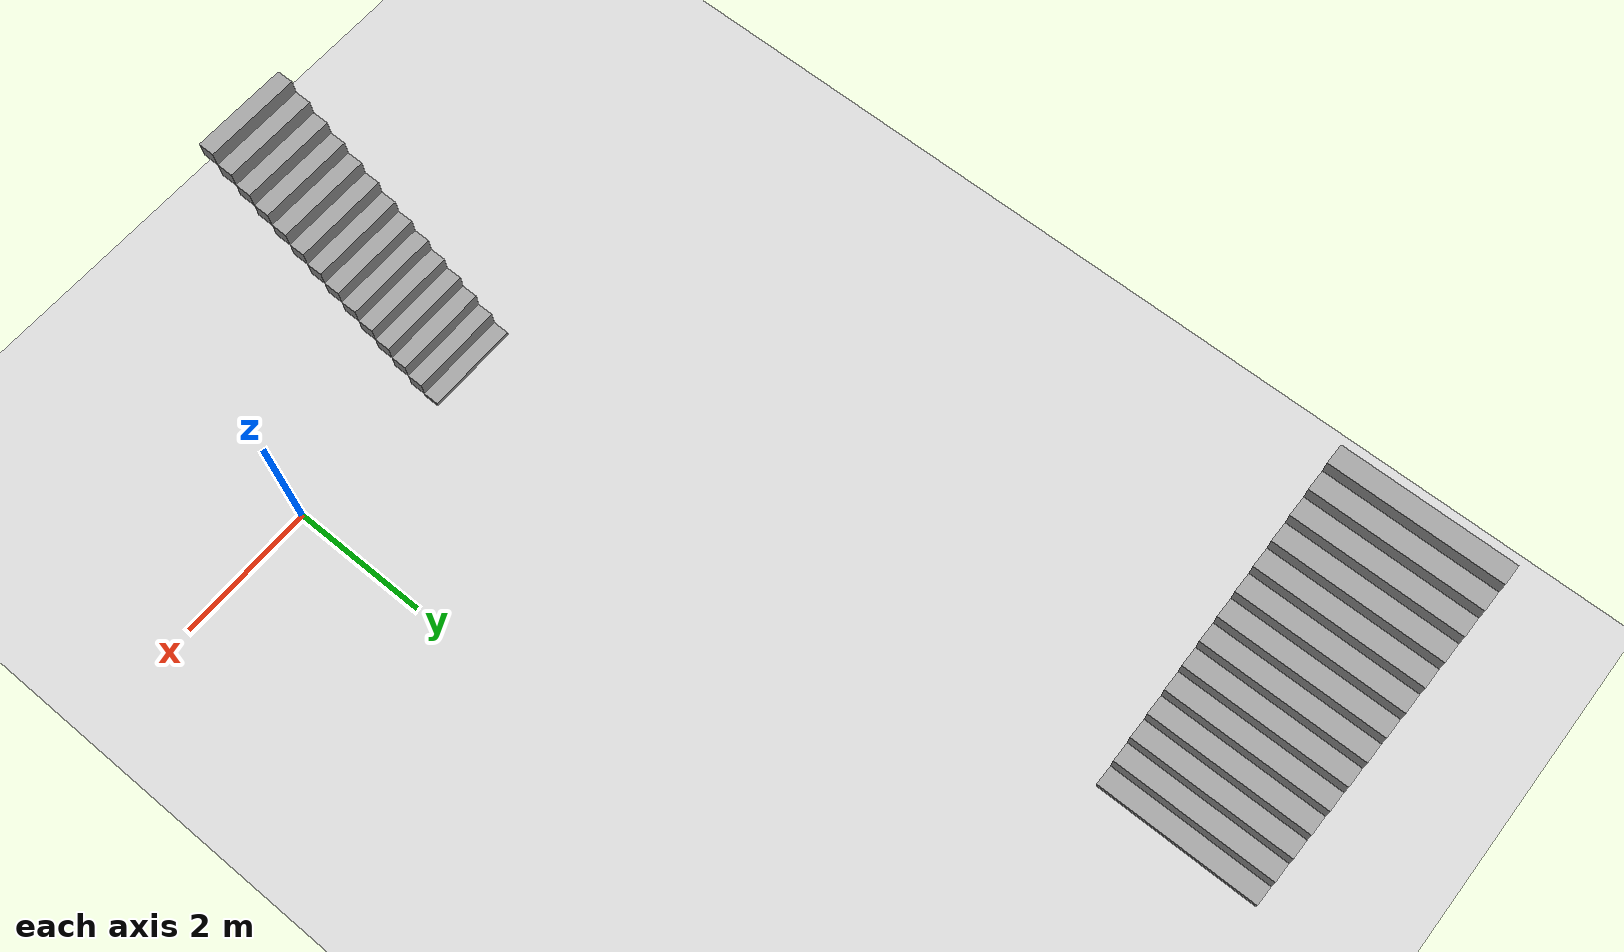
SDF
<sdf version="1.6">
 <world name="default">
  <light name="sun" type="directional">
   <pose>0 0 10 0 -0 0</pose>
   <diffuse>0.8 0.8 0.8 1</diffuse>
   <specular>0.2 0.2 0.2 1</specular>
   <attenuation>
    <range>1000</range>
    <constant>0.9</constant>
    <linear>0.01</linear>
    <quadratic>0.001</quadratic>
   </attenuation>
   <direction>0 0.5 -0.9</direction>
  </light>
  <model name="ground_plane">
   <static>1</static>
   <link name="link">
    <collision name="collision">
     <geometry><plane><normal>0 0 1</normal><size>100 100</size></plane></geometry>
     <surface><friction><ode><mu>100</mu><mu2>50</mu2></ode></friction></surface>
    </collision>
    <visual name="visual">
     <cast_shadows>0</cast_shadows>
     <geometry><plane><normal>0 0 1</normal><size>100 100</size></plane></geometry>
     <material>
      <script><uri>file://media/materials/scripts/gazebo.material</uri><name>Gazebo/Grey</name></script>
     </material>
    </visual>
   </link>
  </model>
  <physics name="default_physics" default="0" type="ode">
   <max_step_size>0.005</max_step_size>
   <real_time_factor>1</real_time_factor>
   <real_time_update_rate>200</real_time_update_rate>
  </physics>
  <gravity>0 0 -9.8</gravity>
  <magnetic_field>6e-06 2.3e-05 -4.2e-05</magnetic_field>
  <atmosphere type="adiabatic"/>
  <scene><ambient>0.4 0.4 0.4 1</ambient><background>0.7 0.7 0.7 1</background><shadows>1</shadows></scene>
  <spherical_coordinates>
   <surface_model>EARTH_WGS84</surface_model>
   <latitude_deg>0</latitude_deg>
   <longitude_deg>0</longitude_deg>
   <elevation>0</elevation>
   <heading_deg>0</heading_deg>
  </spherical_coordinates>
  <audio><device>default</device></audio>
  <model name="stairs">
   <pose>-4.90218 4.62654 -0.4 0 -0 0</pose>
   <link name="Stairs_2">
    <visual name="Stairs_2_Visual_0">
     <pose>1.99426 -4.2368 0.113333 0 -0 0</pose>
     <geometry><box><size>1.35179 0.233333 0.226667</size></box></geometry>
     <material>
      <script><uri>file://media/materials/scripts/gazebo.material</uri><name>Gazebo/Grey</name></script>
      <ambient>1 1 1 1</ambient>
     </material>
     <meta><layer>0</layer></meta>
    </visual>
    <collision name="Stairs_2_Collision_0">
     <geometry><box><size>1.35179 0.233333 0.226667</size></box></geometry>
     <pose>1.99426 -4.2368 0.113333 0 -0 0</pose>
    </collision>
    <visual name="Stairs_2_Visual_1">
     <pose>1.99426 -4.47013 0.34 0 -0 0</pose>
     <geometry><box><size>1.35179 0.233333 0.226667</size></box></geometry>
     <material>
      <script><uri>file://media/materials/scripts/gazebo.material</uri><name>Gazebo/Grey</name></script>
      <ambient>1 1 1 1</ambient>
     </material>
     <meta><layer>0</layer></meta>
    </visual>
    <collision name="Stairs_2_Collision_1">
     <geometry><box><size>1.35179 0.233333 0.226667</size></box></geometry>
     <pose>1.99426 -4.47013 0.34 0 -0 0</pose>
    </collision>
    <visual name="Stairs_2_Visual_2">
     <pose>1.99426 -4.70346 0.566667 0 -0 0</pose>
     <geometry><box><size>1.35179 0.233333 0.226667</size></box></geometry>
     <material>
      <script><uri>file://media/materials/scripts/gazebo.material</uri><name>Gazebo/Grey</name></script>
      <ambient>1 1 1 1</ambient>
     </material>
     <meta><layer>0</layer></meta>
    </visual>
    <collision name="Stairs_2_Collision_2">
     <geometry><box><size>1.35179 0.233333 0.226667</size></box></geometry>
     <pose>1.99426 -4.70346 0.566667 0 -0 0</pose>
    </collision>
    <visual name="Stairs_2_Visual_3">
     <pose>1.99426 -4.9368 0.793333 0 -0 0</pose>
     <geometry><box><size>1.35179 0.233333 0.226667</size></box></geometry>
     <material>
      <script><uri>file://media/materials/scripts/gazebo.material</uri><name>Gazebo/Grey</name></script>
      <ambient>1 1 1 1</ambient>
     </material>
     <meta><layer>0</layer></meta>
    </visual>
    <collision name="Stairs_2_Collision_3">
     <geometry><box><size>1.35179 0.233333 0.226667</size></box></geometry>
     <pose>1.99426 -4.9368 0.793333 0 -0 0</pose>
    </collision>
    <visual name="Stairs_2_Visual_4">
     <pose>1.99426 -5.17013 1.02 0 -0 0</pose>
     <geometry><box><size>1.35179 0.233333 0.226667</size></box></geometry>
     <material>
      <script><uri>file://media/materials/scripts/gazebo.material</uri><name>Gazebo/Grey</name></script>
      <ambient>1 1 1 1</ambient>
     </material>
     <meta><layer>0</layer></meta>
    </visual>
    <collision name="Stairs_2_Collision_4">
     <geometry><box><size>1.35179 0.233333 0.226667</size></box></geometry>
     <pose>1.99426 -5.17013 1.02 0 -0 0</pose>
    </collision>
    <visual name="Stairs_2_Visual_5">
     <pose>1.99426 -5.40346 1.24667 0 -0 0</pose>
     <geometry><box><size>1.35179 0.233333 0.226667</size></box></geometry>
     <material>
      <script><uri>file://media/materials/scripts/gazebo.material</uri><name>Gazebo/Grey</name></script>
      <ambient>1 1 1 1</ambient>
     </material>
     <meta><layer>0</layer></meta>
    </visual>
    <collision name="Stairs_2_Collision_5">
     <geometry><box><size>1.35179 0.233333 0.226667</size></box></geometry>
     <pose>1.99426 -5.40346 1.24667 0 -0 0</pose>
    </collision>
    <visual name="Stairs_2_Visual_6">
     <pose>1.99426 -5.6368 1.47333 0 -0 0</pose>
     <geometry><box><size>1.35179 0.233333 0.226667</size></box></geometry>
     <material>
      <script><uri>file://media/materials/scripts/gazebo.material</uri><name>Gazebo/Grey</name></script>
      <ambient>1 1 1 1</ambient>
     </material>
     <meta><layer>0</layer></meta>
    </visual>
    <collision name="Stairs_2_Collision_6">
     <geometry><box><size>1.35179 0.233333 0.226667</size></box></geometry>
     <pose>1.99426 -5.6368 1.47333 0 -0 0</pose>
    </collision>
    <visual name="Stairs_2_Visual_7">
     <pose>1.99426 -5.87013 1.7 0 -0 0</pose>
     <geometry><box><size>1.35179 0.233333 0.226667</size></box></geometry>
     <material>
      <script><uri>file://media/materials/scripts/gazebo.material</uri><name>Gazebo/Grey</name></script>
      <ambient>1 1 1 1</ambient>
     </material>
     <meta><layer>0</layer></meta>
    </visual>
    <collision name="Stairs_2_Collision_7">
     <geometry><box><size>1.35179 0.233333 0.226667</size></box></geometry>
     <pose>1.99426 -5.87013 1.7 0 -0 0</pose>
    </collision>
    <visual name="Stairs_2_Visual_8">
     <pose>1.99426 -6.10346 1.92667 0 -0 0</pose>
     <geometry><box><size>1.35179 0.233333 0.226667</size></box></geometry>
     <material>
      <script><uri>file://media/materials/scripts/gazebo.material</uri><name>Gazebo/Grey</name></script>
      <ambient>1 1 1 1</ambient>
     </material>
     <meta><layer>0</layer></meta>
    </visual>
    <collision name="Stairs_2_Collision_8">
     <geometry><box><size>1.35179 0.233333 0.226667</size></box></geometry>
     <pose>1.99426 -6.10346 1.92667 0 -0 0</pose>
    </collision>
    <visual name="Stairs_2_Visual_9">
     <pose>1.99426 -6.3368 2.15333 0 -0 0</pose>
     <geometry><box><size>1.35179 0.233333 0.226667</size></box></geometry>
     <material>
      <script><uri>file://media/materials/scripts/gazebo.material</uri><name>Gazebo/Grey</name></script>
      <ambient>1 1 1 1</ambient>
     </material>
     <meta><layer>0</layer></meta>
    </visual>
    <collision name="Stairs_2_Collision_9">
     <geometry><box><size>1.35179 0.233333 0.226667</size></box></geometry>
     <pose>1.99426 -6.3368 2.15333 0 -0 0</pose>
    </collision>
    <visual name="Stairs_2_Visual_10">
     <pose>1.99426 -6.57013 2.38 0 -0 0</pose>
     <geometry><box><size>1.35179 0.233333 0.226667</size></box></geometry>
     <material>
      <script><uri>file://media/materials/scripts/gazebo.material</uri><name>Gazebo/Grey</name></script>
      <ambient>1 1 1 1</ambient>
     </material>
     <meta><layer>0</layer></meta>
    </visual>
    <collision name="Stairs_2_Collision_10">
     <geometry><box><size>1.35179 0.233333 0.226667</size></box></geometry>
     <pose>1.99426 -6.57013 2.38 0 -0 0</pose>
    </collision>
    <visual name="Stairs_2_Visual_11">
     <pose>1.99426 -6.80346 2.60667 0 -0 0</pose>
     <geometry><box><size>1.35179 0.233333 0.226667</size></box></geometry>
     <material>
      <script><uri>file://media/materials/scripts/gazebo.material</uri><name>Gazebo/Grey</name></script>
      <ambient>1 1 1 1</ambient>
     </material>
     <meta><layer>0</layer></meta>
    </visual>
    <collision name="Stairs_2_Collision_11">
     <geometry><box><size>1.35179 0.233333 0.226667</size></box></geometry>
     <pose>1.99426 -6.80346 2.60667 0 -0 0</pose>
    </collision>
    <visual name="Stairs_2_Visual_12">
     <pose>1.99426 -7.0368 2.83333 0 -0 0</pose>
     <geometry><box><size>1.35179 0.233333 0.226667</size></box></geometry>
     <material>
      <script><uri>file://media/materials/scripts/gazebo.material</uri><name>Gazebo/Grey</name></script>
      <ambient>1 1 1 1</ambient>
     </material>
     <meta><layer>0</layer></meta>
    </visual>
    <collision name="Stairs_2_Collision_12">
     <geometry><box><size>1.35179 0.233333 0.226667</size></box></geometry>
     <pose>1.99426 -7.0368 2.83333 0 -0 0</pose>
    </collision>
    <visual name="Stairs_2_Visual_13">
     <pose>1.99426 -7.27013 3.06 0 -0 0</pose>
     <geometry><box><size>1.35179 0.233333 0.226667</size></box></geometry>
     <material>
      <script><uri>file://media/materials/scripts/gazebo.material</uri><name>Gazebo/Grey</name></script>
      <ambient>1 1 1 1</ambient>
     </material>
     <meta><layer>0</layer></meta>
    </visual>
    <collision name="Stairs_2_Collision_13">
     <geometry><box><size>1.35179 0.233333 0.226667</size></box></geometry>
     <pose>1.99426 -7.27013 3.06 0 -0 0</pose>
    </collision>
    <visual name="Stairs_2_Visual_14">
     <pose>1.99426 -7.50346 3.28667 0 -0 0</pose>
     <geometry><box><size>1.35179 0.233333 0.226667</size></box></geometry>
     <material>
      <script><uri>file://media/materials/scripts/gazebo.material</uri><name>Gazebo/Grey</name></script>
      <ambient>1 1 1 1</ambient>
     </material>
     <meta><layer>0</layer></meta>
    </visual>
    <collision name="Stairs_2_Collision_14">
     <geometry><box><size>1.35179 0.233333 0.226667</size></box></geometry>
     <pose>1.99426 -7.50346 3.28667 0 -0 0</pose>
    </collision>
   </link>
   <link name="Stairs_4">
    <visual name="Stairs_4_Visual_0">
     <pose>1.52518 6.45513 0.113333 0 -0 -1.5708</pose>
     <geometry><box><size>2.33 0.289333 0.226667</size></box></geometry>
     <material>
      <script><uri>file://media/materials/scripts/gazebo.material</uri><name>Gazebo/Grey</name></script>
      <ambient>1 1 1 1</ambient>
     </material>
     <meta><layer>0</layer></meta>
    </visual>
    <collision name="Stairs_4_Collision_0">
     <geometry><box><size>2.33 0.289333 0.226667</size></box></geometry>
     <pose>1.52518 6.45513 0.113333 0 -0 -1.5708</pose>
    </collision>
    <visual name="Stairs_4_Visual_1">
     <pose>1.23585 6.45513 0.34 0 -0 -1.5708</pose>
     <geometry><box><size>2.33 0.289333 0.226667</size></box></geometry>
     <material>
      <script><uri>file://media/materials/scripts/gazebo.material</uri><name>Gazebo/Grey</name></script>
      <ambient>1 1 1 1</ambient>
     </material>
     <meta><layer>0</layer></meta>
    </visual>
    <collision name="Stairs_4_Collision_1">
     <geometry><box><size>2.33 0.289333 0.226667</size></box></geometry>
     <pose>1.23585 6.45513 0.34 0 -0 -1.5708</pose>
    </collision>
    <visual name="Stairs_4_Visual_2">
     <pose>0.946515 6.45513 0.566667 0 -0 -1.5708</pose>
     <geometry><box><size>2.33 0.289333 0.226667</size></box></geometry>
     <material>
      <script><uri>file://media/materials/scripts/gazebo.material</uri><name>Gazebo/Grey</name></script>
      <ambient>1 1 1 1</ambient>
     </material>
     <meta><layer>0</layer></meta>
    </visual>
    <collision name="Stairs_4_Collision_2">
     <geometry><box><size>2.33 0.289333 0.226667</size></box></geometry>
     <pose>0.946515 6.45513 0.566667 0 -0 -1.5708</pose>
    </collision>
    <visual name="Stairs_4_Visual_3">
     <pose>0.657182 6.45513 0.793333 0 -0 -1.5708</pose>
     <geometry><box><size>2.33 0.289333 0.226667</size></box></geometry>
     <material>
      <script><uri>file://media/materials/scripts/gazebo.material</uri><name>Gazebo/Grey</name></script>
      <ambient>1 1 1 1</ambient>
     </material>
     <meta><layer>0</layer></meta>
    </visual>
    <collision name="Stairs_4_Collision_3">
     <geometry><box><size>2.33 0.289333 0.226667</size></box></geometry>
     <pose>0.657182 6.45513 0.793333 0 -0 -1.5708</pose>
    </collision>
    <visual name="Stairs_4_Visual_4">
     <pose>0.367848 6.45513 1.02 0 -0 -1.5708</pose>
     <geometry><box><size>2.33 0.289333 0.226667</size></box></geometry>
     <material>
      <script><uri>file://media/materials/scripts/gazebo.material</uri><name>Gazebo/Grey</name></script>
      <ambient>1 1 1 1</ambient>
     </material>
     <meta><layer>0</layer></meta>
    </visual>
    <collision name="Stairs_4_Collision_4">
     <geometry><box><size>2.33 0.289333 0.226667</size></box></geometry>
     <pose>0.367848 6.45513 1.02 0 -0 -1.5708</pose>
    </collision>
    <visual name="Stairs_4_Visual_5">
     <pose>0.078515 6.45513 1.24667 0 -0 -1.5708</pose>
     <geometry><box><size>2.33 0.289333 0.226667</size></box></geometry>
     <material>
      <script><uri>file://media/materials/scripts/gazebo.material</uri><name>Gazebo/Grey</name></script>
      <ambient>1 1 1 1</ambient>
     </material>
     <meta><layer>0</layer></meta>
    </visual>
    <collision name="Stairs_4_Collision_5">
     <geometry><box><size>2.33 0.289333 0.226667</size></box></geometry>
     <pose>0.078515 6.45513 1.24667 0 -0 -1.5708</pose>
    </collision>
    <visual name="Stairs_4_Visual_6">
     <pose>-0.210819 6.45513 1.47333 0 -0 -1.5708</pose>
     <geometry><box><size>2.33 0.289333 0.226667</size></box></geometry>
     <material>
      <script><uri>file://media/materials/scripts/gazebo.material</uri><name>Gazebo/Grey</name></script>
      <ambient>1 1 1 1</ambient>
     </material>
     <meta><layer>0</layer></meta>
    </visual>
    <collision name="Stairs_4_Collision_6">
     <geometry><box><size>2.33 0.289333 0.226667</size></box></geometry>
     <pose>-0.210819 6.45513 1.47333 0 -0 -1.5708</pose>
    </collision>
    <visual name="Stairs_4_Visual_7">
     <pose>-0.500152 6.45513 1.7 0 -0 -1.5708</pose>
     <geometry><box><size>2.33 0.289333 0.226667</size></box></geometry>
     <material>
      <script><uri>file://media/materials/scripts/gazebo.material</uri><name>Gazebo/Grey</name></script>
      <ambient>1 1 1 1</ambient>
     </material>
     <meta><layer>0</layer></meta>
    </visual>
    <collision name="Stairs_4_Collision_7">
     <geometry><box><size>2.33 0.289333 0.226667</size></box></geometry>
     <pose>-0.500152 6.45513 1.7 0 -0 -1.5708</pose>
    </collision>
    <visual name="Stairs_4_Visual_8">
     <pose>-0.789485 6.45513 1.92667 0 -0 -1.5708</pose>
     <geometry><box><size>2.33 0.289333 0.226667</size></box></geometry>
     <material>
      <script><uri>file://media/materials/scripts/gazebo.material</uri><name>Gazebo/Grey</name></script>
      <ambient>1 1 1 1</ambient>
     </material>
     <meta><layer>0</layer></meta>
    </visual>
    <collision name="Stairs_4_Collision_8">
     <geometry><box><size>2.33 0.289333 0.226667</size></box></geometry>
     <pose>-0.789485 6.45513 1.92667 0 -0 -1.5708</pose>
    </collision>
    <visual name="Stairs_4_Visual_9">
     <pose>-1.07882 6.45513 2.15333 0 -0 -1.5708</pose>
     <geometry><box><size>2.33 0.289333 0.226667</size></box></geometry>
     <material>
      <script><uri>file://media/materials/scripts/gazebo.material</uri><name>Gazebo/Grey</name></script>
      <ambient>1 1 1 1</ambient>
     </material>
     <meta><layer>0</layer></meta>
    </visual>
    <collision name="Stairs_4_Collision_9">
     <geometry><box><size>2.33 0.289333 0.226667</size></box></geometry>
     <pose>-1.07882 6.45513 2.15333 0 -0 -1.5708</pose>
    </collision>
    <visual name="Stairs_4_Visual_10">
     <pose>-1.36815 6.45513 2.38 0 -0 -1.5708</pose>
     <geometry><box><size>2.33 0.289333 0.226667</size></box></geometry>
     <material>
      <script><uri>file://media/materials/scripts/gazebo.material</uri><name>Gazebo/Grey</name></script>
      <ambient>1 1 1 1</ambient>
     </material>
     <meta><layer>0</layer></meta>
    </visual>
    <collision name="Stairs_4_Collision_10">
     <geometry><box><size>2.33 0.289333 0.226667</size></box></geometry>
     <pose>-1.36815 6.45513 2.38 0 -0 -1.5708</pose>
    </collision>
    <visual name="Stairs_4_Visual_11">
     <pose>-1.65749 6.45513 2.60667 0 -0 -1.5708</pose>
     <geometry><box><size>2.33 0.289333 0.226667</size></box></geometry>
     <material>
      <script><uri>file://media/materials/scripts/gazebo.material</uri><name>Gazebo/Grey</name></script>
      <ambient>1 1 1 1</ambient>
     </material>
     <meta><layer>0</layer></meta>
    </visual>
    <collision name="Stairs_4_Collision_11">
     <geometry><box><size>2.33 0.289333 0.226667</size></box></geometry>
     <pose>-1.65749 6.45513 2.60667 0 -0 -1.5708</pose>
    </collision>
    <visual name="Stairs_4_Visual_12">
     <pose>-1.94682 6.45513 2.83333 0 -0 -1.5708</pose>
     <geometry><box><size>2.33 0.289333 0.226667</size></box></geometry>
     <material>
      <script><uri>file://media/materials/scripts/gazebo.material</uri><name>Gazebo/Grey</name></script>
      <ambient>1 1 1 1</ambient>
     </material>
     <meta><layer>0</layer></meta>
    </visual>
    <collision name="Stairs_4_Collision_12">
     <geometry><box><size>2.33 0.289333 0.226667</size></box></geometry>
     <pose>-1.94682 6.45513 2.83333 0 -0 -1.5708</pose>
    </collision>
    <visual name="Stairs_4_Visual_13">
     <pose>-2.23615 6.45513 3.06 0 -0 -1.5708</pose>
     <geometry><box><size>2.33 0.289333 0.226667</size></box></geometry>
     <material>
      <script><uri>file://media/materials/scripts/gazebo.material</uri><name>Gazebo/Grey</name></script>
      <ambient>1 1 1 1</ambient>
     </material>
     <meta><layer>0</layer></meta>
    </visual>
    <collision name="Stairs_4_Collision_13">
     <geometry><box><size>2.33 0.289333 0.226667</size></box></geometry>
     <pose>-2.23615 6.45513 3.06 0 -0 -1.5708</pose>
    </collision>
    <visual name="Stairs_4_Visual_14">
     <pose>-2.52549 6.45513 3.28667 0 -0 -1.5708</pose>
     <geometry><box><size>2.33 0.289333 0.226667</size></box></geometry>
     <material>
      <script><uri>file://media/materials/scripts/gazebo.material</uri><name>Gazebo/Grey</name></script>
      <ambient>1 1 1 1</ambient>
     </material>
     <meta><layer>0</layer></meta>
    </visual>
    <collision name="Stairs_4_Collision_14">
     <geometry><box><size>2.33 0.289333 0.226667</size></box></geometry>
     <pose>-2.52549 6.45513 3.28667 0 -0 -1.5708</pose>
    </collision>
   </link>
   <static>1</static>
  </model>
 </world>
</sdf>
